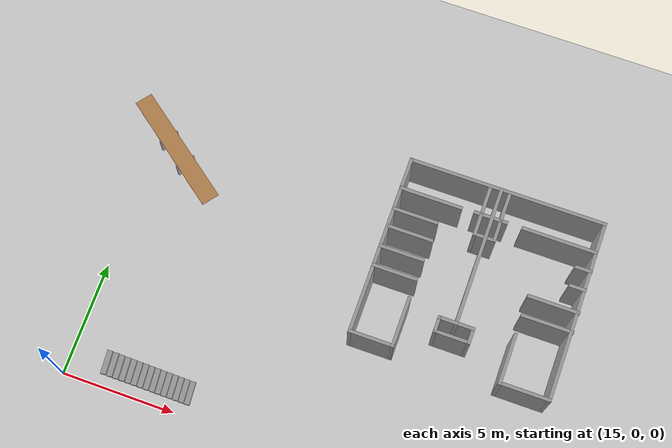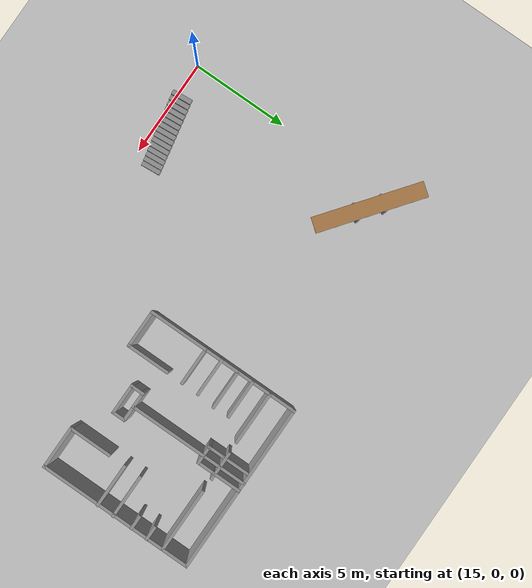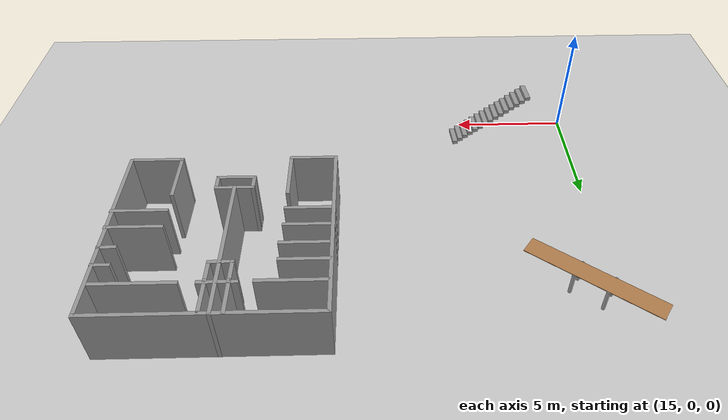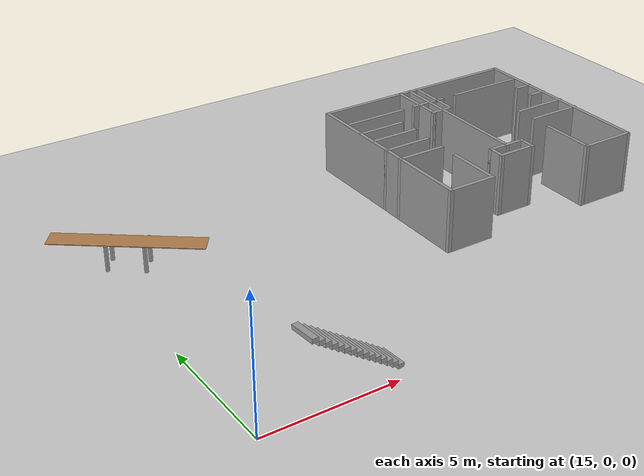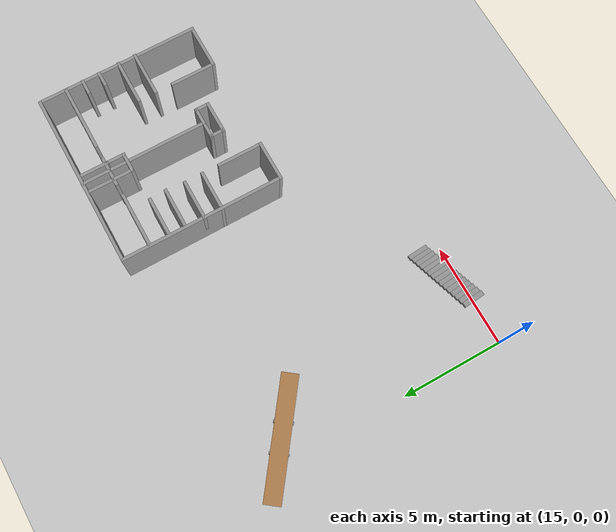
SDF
<sdf version="1.6">
 <world name="default">
  <model name="ground_plane">
   <static>1</static>
   <link name="link">
    <collision name="collision">
     <geometry><plane><normal>0 0 1</normal><size>100 100</size></plane></geometry>
     <surface>
      <contact><collide_bitmask>65535</collide_bitmask></contact>
      <friction><ode><mu>100</mu><mu2>50</mu2></ode></friction>
     </surface>
    </collision>
    <visual name="visual">
     <cast_shadows>0</cast_shadows>
     <geometry><plane><normal>0 0 1</normal><size>100 100</size></plane></geometry>
     <material>
      <script><uri>file://media/materials/scripts/gazebo.material</uri><name>Gazebo/Grey</name></script>
     </material>
    </visual>
   </link>
  </model>
  <model name="109110">
   <pose>30.204 9.17564 0 0 -0 0</pose>
   <link name="Wall_100">
    <collision name="Wall_100_Collision">
     <geometry><box><size>1 0.15 2.5</size></box></geometry>
     <pose>0 0 1.25 0 -0 0</pose>
    </collision>
    <visual name="Wall_100_Visual">
     <pose>0 0 1.25 0 -0 0</pose>
     <geometry><box><size>1 0.15 2.5</size></box></geometry>
     <material>
      <script><uri>file://media/materials/scripts/gazebo.material</uri><name>Gazebo/Grey</name></script>
      <ambient>1 1 1 1</ambient>
     </material>
     <meta><layer>0</layer></meta>
    </visual>
    <pose>-0.744046 2.12506 0 0 -0 1.5708</pose>
   </link>
   <link name="Wall_102">
    <collision name="Wall_102_Collision">
     <geometry><box><size>1.5 0.15 2.5</size></box></geometry>
     <pose>0 0 1.25 0 -0 0</pose>
    </collision>
    <visual name="Wall_102_Visual">
     <pose>0 0 1.25 0 -0 0</pose>
     <geometry><box><size>1.5 0.15 2.5</size></box></geometry>
     <material>
      <script><uri>file://media/materials/scripts/gazebo.material</uri><name>Gazebo/Grey</name></script>
      <ambient>1 1 1 1</ambient>
     </material>
     <meta><layer>0</layer></meta>
    </visual>
    <pose>-0.329046 2.61006 0 0 -0 0</pose>
   </link>
   <link name="Wall_104">
    <collision name="Wall_104_Collision">
     <geometry><box><size>3.25 0.15 2.5</size></box></geometry>
     <pose>0 0 1.25 0 -0 0</pose>
    </collision>
    <visual name="Wall_104_Visual">
     <pose>0 0 1.25 0 -0 0</pose>
     <geometry><box><size>3.25 0.15 2.5</size></box></geometry>
     <material>
      <script><uri>file://media/materials/scripts/gazebo.material</uri><name>Gazebo/Grey</name></script>
      <ambient>1 1 1 1</ambient>
     </material>
     <meta><layer>0</layer></meta>
    </visual>
    <pose>2.64595 2.61006 0 0 -0 3.14159</pose>
   </link>
   <link name="Wall_109">
    <collision name="Wall_109_Collision">
     <geometry><box><size>2.75 0.15 2.5</size></box></geometry>
     <pose>0 0 1.25 0 -0 0</pose>
    </collision>
    <visual name="Wall_109_Visual">
     <pose>0 0 1.25 0 -0 0</pose>
     <geometry><box><size>2.75 0.15 2.5</size></box></geometry>
     <material>
      <script><uri>file://media/materials/scripts/gazebo.material</uri><name>Gazebo/Grey</name></script>
      <ambient>1 1 1 1</ambient>
     </material>
     <meta><layer>0</layer></meta>
    </visual>
    <pose>-2.94405 2.59006 0 0 -0 0</pose>
   </link>
   <link name="Wall_111">
    <collision name="Wall_111_Collision">
     <geometry><box><size>1.5 0.15 2.5</size></box></geometry>
     <pose>0 0 1.25 0 -0 0</pose>
    </collision>
    <visual name="Wall_111_Visual">
     <pose>0 0 1.25 0 -0 0</pose>
     <geometry><box><size>1.5 0.15 2.5</size></box></geometry>
     <material>
      <script><uri>file://media/materials/scripts/gazebo.material</uri><name>Gazebo/Grey</name></script>
      <ambient>1 1 1 1</ambient>
     </material>
     <meta><layer>0</layer></meta>
    </visual>
    <pose>-0.744046 3.22506 0 0 -0 1.5708</pose>
   </link>
   <link name="Wall_113">
    <collision name="Wall_113_Collision">
     <geometry><box><size>1.5 0.15 2.5</size></box></geometry>
     <pose>0 0 1.25 0 -0 0</pose>
    </collision>
    <visual name="Wall_113_Visual">
     <pose>0 0 1.25 0 -0 0</pose>
     <geometry><box><size>1.5 0.15 2.5</size></box></geometry>
     <material>
      <script><uri>file://media/materials/scripts/gazebo.material</uri><name>Gazebo/Grey</name></script>
      <ambient>1 1 1 1</ambient>
     </material>
     <meta><layer>0</layer></meta>
    </visual>
    <pose>0.105954 3.22506 0 0 -0 1.5708</pose>
   </link>
   <link name="Wall_56">
    <collision name="Wall_56_Collision">
     <geometry><box><size>8 0.15 2.5</size></box></geometry>
     <pose>0 0 1.25 0 -0 0</pose>
    </collision>
    <visual name="Wall_56_Visual">
     <pose>0 0 1.25 0 -0 0</pose>
     <geometry><box><size>8 0.15 2.5</size></box></geometry>
     <material>
      <script><uri>file://media/materials/scripts/gazebo.material</uri><name>Gazebo/Grey</name></script>
      <ambient>1 1 1 1</ambient>
     </material>
     <meta><layer>0</layer></meta>
    </visual>
    <pose>-4.27595 -0.004904 0 0 -0 1.5708</pose>
   </link>
   <link name="Wall_57">
    <collision name="Wall_57_Collision">
     <geometry><box><size>8.668 0.15 2.5</size></box></geometry>
     <pose>0 0 1.25 0 -0 0</pose>
    </collision>
    <visual name="Wall_57_Visual">
     <pose>0 0 1.25 0 -0 0</pose>
     <geometry><box><size>8.668 0.15 2.5</size></box></geometry>
     <material>
      <script><uri>file://media/materials/scripts/gazebo.material</uri><name>Gazebo/Grey</name></script>
      <ambient>1 1 1 1</ambient>
     </material>
     <meta><layer>0</layer></meta>
    </visual>
    <pose>-0.016953 3.9201 0 0 -0 0</pose>
   </link>
   <link name="Wall_58">
    <collision name="Wall_58_Collision">
     <geometry><box><size>8 0.15 2.5</size></box></geometry>
     <pose>0 0 1.25 0 -0 0</pose>
    </collision>
    <visual name="Wall_58_Visual">
     <pose>0 0 1.25 0 -0 0</pose>
     <geometry><box><size>8 0.15 2.5</size></box></geometry>
     <material>
      <script><uri>file://media/materials/scripts/gazebo.material</uri><name>Gazebo/Grey</name></script>
      <ambient>1 1 1 1</ambient>
     </material>
     <meta><layer>0</layer></meta>
    </visual>
    <pose>4.24205 -0.004904 0 0 -0 -1.5708</pose>
   </link>
   <link name="Wall_61">
    <collision name="Wall_61_Collision">
     <geometry><box><size>2.25 0.15 2.5</size></box></geometry>
     <pose>0 0 1.25 0 -0 0</pose>
    </collision>
    <visual name="Wall_61_Visual">
     <pose>0 0 1.25 0 -0 0</pose>
     <geometry><box><size>2.25 0.15 2.5</size></box></geometry>
     <material>
      <script><uri>file://media/materials/scripts/gazebo.material</uri><name>Gazebo/Grey</name></script>
      <ambient>1 1 1 1</ambient>
     </material>
     <meta><layer>0</layer></meta>
    </visual>
    <pose>3.19205 -3.9299 0 0 -0 3.14159</pose>
   </link>
   <link name="Wall_62">
    <collision name="Wall_62_Collision">
     <geometry><box><size>2.25 0.15 2.5</size></box></geometry>
     <pose>0 0 1.25 0 -0 0</pose>
    </collision>
    <visual name="Wall_62_Visual">
     <pose>0 0 1.25 0 -0 0</pose>
     <geometry><box><size>2.25 0.15 2.5</size></box></geometry>
     <material>
      <script><uri>file://media/materials/scripts/gazebo.material</uri><name>Gazebo/Grey</name></script>
      <ambient>1 1 1 1</ambient>
     </material>
     <meta><layer>0</layer></meta>
    </visual>
    <pose>2.14205 -2.8799 0 0 -0 1.5708</pose>
   </link>
   <link name="Wall_64">
    <collision name="Wall_64_Collision">
     <geometry><box><size>2 0.15 2.5</size></box></geometry>
     <pose>0 0 1.25 0 -0 0</pose>
    </collision>
    <visual name="Wall_64_Visual">
     <pose>0 0 1.25 0 -0 0</pose>
     <geometry><box><size>2 0.15 2.5</size></box></geometry>
     <material>
      <script><uri>file://media/materials/scripts/gazebo.material</uri><name>Gazebo/Grey</name></script>
      <ambient>1 1 1 1</ambient>
     </material>
     <meta><layer>0</layer></meta>
    </visual>
    <pose>-3.35095 -3.9299 0 0 -0 0</pose>
   </link>
   <link name="Wall_65">
    <collision name="Wall_65_Collision">
     <geometry><box><size>2.25 0.15 2.5</size></box></geometry>
     <pose>0 0 1.25 0 -0 0</pose>
    </collision>
    <visual name="Wall_65_Visual">
     <pose>0 0 1.25 0 -0 0</pose>
     <geometry><box><size>2.25 0.15 2.5</size></box></geometry>
     <material>
      <script><uri>file://media/materials/scripts/gazebo.material</uri><name>Gazebo/Grey</name></script>
      <ambient>1 1 1 1</ambient>
     </material>
     <meta><layer>0</layer></meta>
    </visual>
    <pose>-2.42595 -2.8799 0 0 -0 1.5708</pose>
   </link>
   <link name="Wall_67">
    <collision name="Wall_67_Collision">
     <geometry><box><size>6.25 0.15 2.5</size></box></geometry>
     <pose>0 0 1.25 0 -0 0</pose>
    </collision>
    <visual name="Wall_67_Visual">
     <pose>0 0 1.25 0 -0 0</pose>
     <geometry><box><size>6.25 0.15 2.5</size></box></geometry>
     <material>
      <script><uri>file://media/materials/scripts/gazebo.material</uri><name>Gazebo/Grey</name></script>
      <ambient>1 1 1 1</ambient>
     </material>
     <meta><layer>0</layer></meta>
    </visual>
    <pose>-0.275761 0.879905 0 0 -0 -1.5708</pose>
   </link>
   <link name="Wall_68">
    <collision name="Wall_68_Collision">
     <geometry><box><size>0.88 0.15 2.5</size></box></geometry>
     <pose>0 0 1.25 0 -0 0</pose>
    </collision>
    <visual name="Wall_68_Visual">
     <pose>0 0 1.25 0 -0 0</pose>
     <geometry><box><size>0.88 0.15 2.5</size></box></geometry>
     <material>
      <script><uri>file://media/materials/scripts/gazebo.material</uri><name>Gazebo/Grey</name></script>
      <ambient>1 1 1 1</ambient>
     </material>
     <meta><layer>0</layer></meta>
    </visual>
    <pose>0.089239 -2.17009 0 0 -0 0</pose>
   </link>
   <link name="Wall_69">
    <collision name="Wall_69_Collision">
     <geometry><box><size>0.75 0.15 2.5</size></box></geometry>
     <pose>0 0 1.25 0 -0 0</pose>
    </collision>
    <visual name="Wall_69_Visual">
     <pose>0 0 1.25 0 -0 0</pose>
     <geometry><box><size>0.75 0.15 2.5</size></box></geometry>
     <material>
      <script><uri>file://media/materials/scripts/gazebo.material</uri><name>Gazebo/Grey</name></script>
      <ambient>1 1 1 1</ambient>
     </material>
     <meta><layer>0</layer></meta>
    </visual>
    <pose>0.454239 -2.4701 0 0 -0 -1.5708</pose>
   </link>
   <link name="Wall_70">
    <collision name="Wall_70_Collision">
     <geometry><box><size>1.61 0.15 2.5</size></box></geometry>
     <pose>0 0 1.25 0 -0 0</pose>
    </collision>
    <visual name="Wall_70_Visual">
     <pose>0 0 1.25 0 -0 0</pose>
     <geometry><box><size>1.61 0.15 2.5</size></box></geometry>
     <material>
      <script><uri>file://media/materials/scripts/gazebo.material</uri><name>Gazebo/Grey</name></script>
      <ambient>1 1 1 1</ambient>
     </material>
     <meta><layer>0</layer></meta>
    </visual>
    <pose>-0.275761 -2.77009 0 0 -0 3.14159</pose>
   </link>
   <link name="Wall_71">
    <collision name="Wall_71_Collision">
     <geometry><box><size>0.750333 0.15 2.5</size></box></geometry>
     <pose>0 0 1.25 0 -0 0</pose>
    </collision>
    <visual name="Wall_71_Visual">
     <pose>0 0 1.25 0 -0 0</pose>
     <geometry><box><size>0.750333 0.15 2.5</size></box></geometry>
     <material>
      <script><uri>file://media/materials/scripts/gazebo.material</uri><name>Gazebo/Grey</name></script>
      <ambient>1 1 1 1</ambient>
     </material>
     <meta><layer>0</layer></meta>
    </visual>
    <pose>-1.00576 -2.4701 0 0 -0 1.5708</pose>
   </link>
   <link name="Wall_72">
    <collision name="Wall_72_Collision">
     <geometry><box><size>0.88 0.15 2.5</size></box></geometry>
     <pose>0 0 1.25 0 -0 0</pose>
    </collision>
    <visual name="Wall_72_Visual">
     <pose>0 0 1.25 0 -0 0</pose>
     <geometry><box><size>0.88 0.15 2.5</size></box></geometry>
     <material>
      <script><uri>file://media/materials/scripts/gazebo.material</uri><name>Gazebo/Grey</name></script>
      <ambient>1 1 1 1</ambient>
     </material>
     <meta><layer>0</layer></meta>
    </visual>
    <pose>-0.640761 -2.17009 0 0 -0 0</pose>
   </link>
   <link name="Wall_74">
    <collision name="Wall_74_Collision">
     <geometry><box><size>2 0.15 2.5</size></box></geometry>
     <pose>0 0 1.25 0 -0 0</pose>
    </collision>
    <visual name="Wall_74_Visual">
     <pose>0 0 1.25 0 -0 0</pose>
     <geometry><box><size>2 0.15 2.5</size></box></geometry>
     <material>
      <script><uri>file://media/materials/scripts/gazebo.material</uri><name>Gazebo/Grey</name></script>
      <ambient>1 1 1 1</ambient>
     </material>
     <meta><layer>0</layer></meta>
    </visual>
    <pose>-3.35095 -0.969904 0 0 -0 0</pose>
   </link>
   <link name="Wall_76">
    <collision name="Wall_76_Collision">
     <geometry><box><size>2 0.15 2.5</size></box></geometry>
     <pose>0 0 1.25 0 -0 0</pose>
    </collision>
    <visual name="Wall_76_Visual">
     <pose>0 0 1.25 0 -0 0</pose>
     <geometry><box><size>2 0.15 2.5</size></box></geometry>
     <material>
      <script><uri>file://media/materials/scripts/gazebo.material</uri><name>Gazebo/Grey</name></script>
      <ambient>1 1 1 1</ambient>
     </material>
     <meta><layer>0</layer></meta>
    </visual>
    <pose>-3.35095 -0.089904 0 0 -0 0</pose>
   </link>
   <link name="Wall_79">
    <collision name="Wall_79_Collision">
     <geometry><box><size>2 0.15 2.5</size></box></geometry>
     <pose>0 0 1.25 0 -0 0</pose>
    </collision>
    <visual name="Wall_79_Visual">
     <pose>0 0 1.25 0 -0 0</pose>
     <geometry><box><size>2 0.15 2.5</size></box></geometry>
     <material>
      <script><uri>file://media/materials/scripts/gazebo.material</uri><name>Gazebo/Grey</name></script>
      <ambient>1 1 1 1</ambient>
     </material>
     <meta><layer>0</layer></meta>
    </visual>
    <pose>-3.27095 0.830096 0 0 -0 0</pose>
   </link>
   <link name="Wall_81">
    <collision name="Wall_81_Collision">
     <geometry><box><size>2 0.15 2.5</size></box></geometry>
     <pose>0 0 1.25 0 -0 0</pose>
    </collision>
    <visual name="Wall_81_Visual">
     <pose>0 0 1.25 0 -0 0</pose>
     <geometry><box><size>2 0.15 2.5</size></box></geometry>
     <material>
      <script><uri>file://media/materials/scripts/gazebo.material</uri><name>Gazebo/Grey</name></script>
      <ambient>1 1 1 1</ambient>
     </material>
     <meta><layer>0</layer></meta>
    </visual>
    <pose>-3.31095 1.6301 0 0 -0 0</pose>
   </link>
   <link name="Wall_90">
    <collision name="Wall_90_Collision">
     <geometry><box><size>2.25 0.15 2.5</size></box></geometry>
     <pose>0 0 1.25 0 -0 0</pose>
    </collision>
    <visual name="Wall_90_Visual">
     <pose>0 0 1.25 0 -0 0</pose>
     <geometry><box><size>2.25 0.15 2.5</size></box></geometry>
     <material>
      <script><uri>file://media/materials/scripts/gazebo.material</uri><name>Gazebo/Grey</name></script>
      <ambient>1 1 1 1</ambient>
     </material>
     <meta><layer>0</layer></meta>
    </visual>
    <pose>3.22595 -0.949944 0 0 -0 3.14159</pose>
   </link>
   <link name="Wall_92">
    <collision name="Wall_92_Collision">
     <geometry><box><size>2.25 0.15 2.5</size></box></geometry>
     <pose>0 0 1.25 0 -0 0</pose>
    </collision>
    <visual name="Wall_92_Visual">
     <pose>0 0 1.25 0 -0 0</pose>
     <geometry><box><size>2.25 0.15 2.5</size></box></geometry>
     <material>
      <script><uri>file://media/materials/scripts/gazebo.material</uri><name>Gazebo/Grey</name></script>
      <ambient>1 1 1 1</ambient>
     </material>
     <meta><layer>0</layer></meta>
    </visual>
    <pose>3.22595 -0.089944 0 0 -0 3.14159</pose>
   </link>
   <link name="Wall_94">
    <collision name="Wall_94_Collision">
     <geometry><box><size>0.75 0.15 2.5</size></box></geometry>
     <pose>0 0 1.25 0 -0 0</pose>
    </collision>
    <visual name="Wall_94_Visual">
     <pose>0 0 1.25 0 -0 0</pose>
     <geometry><box><size>0.75 0.15 2.5</size></box></geometry>
     <material>
      <script><uri>file://media/materials/scripts/gazebo.material</uri><name>Gazebo/Grey</name></script>
      <ambient>1 1 1 1</ambient>
     </material>
     <meta><layer>0</layer></meta>
    </visual>
    <pose>3.95595 0.910056 0 0 -0 3.14159</pose>
   </link>
   <link name="Wall_96">
    <collision name="Wall_96_Collision">
     <geometry><box><size>0.75 0.15 2.5</size></box></geometry>
     <pose>0 0 1.25 0 -0 0</pose>
    </collision>
    <visual name="Wall_96_Visual">
     <pose>0 0 1.25 0 -0 0</pose>
     <geometry><box><size>0.75 0.15 2.5</size></box></geometry>
     <material>
      <script><uri>file://media/materials/scripts/gazebo.material</uri><name>Gazebo/Grey</name></script>
      <ambient>1 1 1 1</ambient>
     </material>
     <meta><layer>0</layer></meta>
    </visual>
    <pose>3.95595 1.75006 0 0 -0 3.14159</pose>
   </link>
   <link name="Wall_98">
    <collision name="Wall_98_Collision">
     <geometry><box><size>1 0.15 2.5</size></box></geometry>
     <pose>0 0 1.25 0 -0 0</pose>
    </collision>
    <visual name="Wall_98_Visual">
     <pose>0 0 1.25 0 -0 0</pose>
     <geometry><box><size>1 0.15 2.5</size></box></geometry>
     <material>
      <script><uri>file://media/materials/scripts/gazebo.material</uri><name>Gazebo/Grey</name></script>
      <ambient>1 1 1 1</ambient>
     </material>
     <meta><layer>0</layer></meta>
    </visual>
    <pose>0.105954 2.12506 0 0 -0 -1.5708</pose>
   </link>
   <link name="Wall_99">
    <collision name="Wall_99_Collision">
     <geometry><box><size>1 0.15 2.5</size></box></geometry>
     <pose>0 0 1.25 0 -0 0</pose>
    </collision>
    <visual name="Wall_99_Visual">
     <pose>0 0 1.25 0 -0 0</pose>
     <geometry><box><size>1 0.15 2.5</size></box></geometry>
     <material>
      <script><uri>file://media/materials/scripts/gazebo.material</uri><name>Gazebo/Grey</name></script>
      <ambient>1 1 1 1</ambient>
     </material>
     <meta><layer>0</layer></meta>
    </visual>
    <pose>-0.319046 1.70006 0 0 -0 3.14159</pose>
   </link>
   <static>1</static>
  </model>
  <model name="tables">
   <link name="link_clone_clone_0_clone">
    <inertial>
     <inertia><ixx>0</ixx><ixy>0</ixy><ixz>0</ixz><iyy>0</iyy><iyz>0</iyz><izz>0</izz></inertia>
     <mass>0</mass>
    </inertial>
    <pose>4.16958 -3.97969 0 0 0 -0.65005</pose>
    <visual name="back_right_leg">
     <pose>-0.68 -0.38 0.5 0 -0 0</pose>
     <geometry><cylinder><radius>0.0748358</radius><length>1</length></cylinder></geometry>
     <material>
      <script><uri>file://media/materials/scripts/gazebo.material</uri><name>Gazebo/Grey</name></script>
      <shader type="pixel"/>
     </material>
    </visual>
    <visual name="front_right_leg">
     <pose>0.68 -0.38 0.5 0 -0 0</pose>
     <geometry><cylinder><radius>0.0748358</radius><length>1</length></cylinder></geometry>
     <material>
      <script><uri>file://media/materials/scripts/gazebo.material</uri><name>Gazebo/Grey</name></script>
      <shader type="pixel"/>
     </material>
    </visual>
    <visual name="front_left_leg">
     <pose>0.68 0.38 0.5 0 -0 0</pose>
     <geometry><cylinder><radius>0.0748358</radius><length>1</length></cylinder></geometry>
     <material>
      <script><uri>file://media/materials/scripts/gazebo.material</uri><name>Gazebo/Grey</name></script>
      <shader type="pixel"/>
     </material>
    </visual>
    <visual name="back_left_leg">
     <pose>-0.68 0.38 0.5 0 -0 0</pose>
     <geometry><cylinder><radius>0.0748358</radius><length>1</length></cylinder></geometry>
     <material>
      <script><uri>file://media/materials/scripts/gazebo.material</uri><name>Gazebo/Grey</name></script>
      <shader type="pixel"/>
     </material>
    </visual>
    <visual name="visual1">
     <pose>0 0 1 0 -0 0</pose>
     <geometry><box><size>5.60463 0.8 0.03</size></box></geometry>
     <material>
      <script><uri>file://media/materials/scripts/gazebo.material</uri><name>Gazebo/Wood</name></script>
      <shader type="pixel"/>
     </material>
    </visual>
    <collision name="front_right_leg_0">
     <pose>0.68 -0.38 0.5 0 -0 0</pose>
     <geometry><cylinder><radius>0.074836</radius><length>1</length></cylinder></geometry>
     <surface>
      <friction>
       <ode><mu>1</mu><mu2>1</mu2><fdir1>0 0 0</fdir1><slip1>0</slip1><slip2>0</slip2></ode>
       <torsional>
        <coefficient>1</coefficient>
        <patch_radius>0</patch_radius>
        <surface_radius>0</surface_radius>
        <use_patch_radius>1</use_patch_radius>
        <ode><slip>0</slip></ode>
       </torsional>
      </friction>
      <bounce><restitution_coefficient>0</restitution_coefficient><threshold>1e+06</threshold></bounce>
      <contact>
       <collide_without_contact>0</collide_without_contact>
       <collide_without_contact_bitmask>1</collide_without_contact_bitmask>
       <collide_bitmask>1</collide_bitmask>
       <ode>
        <soft_cfm>0</soft_cfm>
        <soft_erp>0.2</soft_erp>
        <kp>1e+13</kp>
        <kd>1</kd>
        <max_vel>0.01</max_vel>
        <min_depth>0</min_depth>
       </ode>
       <bullet>
        <split_impulse>1</split_impulse>
        <split_impulse_penetration_threshold>-0.01</split_impulse_penetration_threshold>
        <soft_cfm>0</soft_cfm>
        <soft_erp>0.2</soft_erp>
        <kp>1e+13</kp>
        <kd>1</kd>
       </bullet>
      </contact>
     </surface>
    </collision>
    <collision name="back_right_leg_0">
     <pose>-0.68 -0.38 0.5 0 -0 0</pose>
     <geometry><cylinder><radius>0.074836</radius><length>1</length></cylinder></geometry>
     <surface>
      <friction>
       <ode><mu>1</mu><mu2>1</mu2><fdir1>0 0 0</fdir1><slip1>0</slip1><slip2>0</slip2></ode>
       <torsional>
        <coefficient>1</coefficient>
        <patch_radius>0</patch_radius>
        <surface_radius>0</surface_radius>
        <use_patch_radius>1</use_patch_radius>
        <ode><slip>0</slip></ode>
       </torsional>
      </friction>
      <bounce><restitution_coefficient>0</restitution_coefficient><threshold>1e+06</threshold></bounce>
      <contact>
       <collide_without_contact>0</collide_without_contact>
       <collide_without_contact_bitmask>1</collide_without_contact_bitmask>
       <collide_bitmask>1</collide_bitmask>
       <ode>
        <soft_cfm>0</soft_cfm>
        <soft_erp>0.2</soft_erp>
        <kp>1e+13</kp>
        <kd>1</kd>
        <max_vel>0.01</max_vel>
        <min_depth>0</min_depth>
       </ode>
       <bullet>
        <split_impulse>1</split_impulse>
        <split_impulse_penetration_threshold>-0.01</split_impulse_penetration_threshold>
        <soft_cfm>0</soft_cfm>
        <soft_erp>0.2</soft_erp>
        <kp>1e+13</kp>
        <kd>1</kd>
       </bullet>
      </contact>
     </surface>
    </collision>
    <collision name="back_left_leg_0">
     <pose>-0.68 0.38 0.5 0 -0 0</pose>
     <geometry><cylinder><radius>0.074836</radius><length>1</length></cylinder></geometry>
     <surface>
      <friction>
       <ode><mu>1</mu><mu2>1</mu2><fdir1>0 0 0</fdir1><slip1>0</slip1><slip2>0</slip2></ode>
       <torsional>
        <coefficient>1</coefficient>
        <patch_radius>0</patch_radius>
        <surface_radius>0</surface_radius>
        <use_patch_radius>1</use_patch_radius>
        <ode><slip>0</slip></ode>
       </torsional>
      </friction>
      <bounce><restitution_coefficient>0</restitution_coefficient><threshold>1e+06</threshold></bounce>
      <contact>
       <collide_without_contact>0</collide_without_contact>
       <collide_without_contact_bitmask>1</collide_without_contact_bitmask>
       <collide_bitmask>1</collide_bitmask>
       <ode>
        <soft_cfm>0</soft_cfm>
        <soft_erp>0.2</soft_erp>
        <kp>1e+13</kp>
        <kd>1</kd>
        <max_vel>0.01</max_vel>
        <min_depth>0</min_depth>
       </ode>
       <bullet>
        <split_impulse>1</split_impulse>
        <split_impulse_penetration_threshold>-0.01</split_impulse_penetration_threshold>
        <soft_cfm>0</soft_cfm>
        <soft_erp>0.2</soft_erp>
        <kp>1e+13</kp>
        <kd>1</kd>
       </bullet>
      </contact>
     </surface>
    </collision>
    <collision name="surface">
     <pose>0 0 1 0 -0 0</pose>
     <geometry><box><size>5.60463 0.8 0.03</size></box></geometry>
     <surface>
      <friction>
       <ode><mu>1</mu><mu2>1</mu2><fdir1>0 0 0</fdir1><slip1>0</slip1><slip2>0</slip2></ode>
       <torsional>
        <coefficient>1</coefficient>
        <patch_radius>0</patch_radius>
        <surface_radius>0</surface_radius>
        <use_patch_radius>1</use_patch_radius>
        <ode><slip>0</slip></ode>
       </torsional>
      </friction>
      <bounce><restitution_coefficient>0</restitution_coefficient><threshold>1e+06</threshold></bounce>
      <contact>
       <collide_without_contact>0</collide_without_contact>
       <collide_without_contact_bitmask>1</collide_without_contact_bitmask>
       <collide_bitmask>1</collide_bitmask>
       <ode>
        <soft_cfm>0</soft_cfm>
        <soft_erp>0.2</soft_erp>
        <kp>1e+13</kp>
        <kd>1</kd>
        <max_vel>0.01</max_vel>
        <min_depth>0</min_depth>
       </ode>
       <bullet>
        <split_impulse>1</split_impulse>
        <split_impulse_penetration_threshold>-0.01</split_impulse_penetration_threshold>
        <soft_cfm>0</soft_cfm>
        <soft_erp>0.2</soft_erp>
        <kp>1e+13</kp>
        <kd>1</kd>
       </bullet>
      </contact>
     </surface>
    </collision>
    <collision name="front_left_leg_0">
     <pose>0.68 0.38 0.5 0 -0 0</pose>
     <geometry><cylinder><radius>0.074836</radius><length>1</length></cylinder></geometry>
     <surface>
      <friction>
       <ode><mu>1</mu><mu2>1</mu2><fdir1>0 0 0</fdir1><slip1>0</slip1><slip2>0</slip2></ode>
       <torsional>
        <coefficient>1</coefficient>
        <patch_radius>0</patch_radius>
        <surface_radius>0</surface_radius>
        <use_patch_radius>1</use_patch_radius>
        <ode><slip>0</slip></ode>
       </torsional>
      </friction>
      <bounce><restitution_coefficient>0</restitution_coefficient><threshold>1e+06</threshold></bounce>
      <contact>
       <collide_without_contact>0</collide_without_contact>
       <collide_without_contact_bitmask>1</collide_without_contact_bitmask>
       <collide_bitmask>1</collide_bitmask>
       <ode>
        <soft_cfm>0</soft_cfm>
        <soft_erp>0.2</soft_erp>
        <kp>1e+13</kp>
        <kd>1</kd>
        <max_vel>0.01</max_vel>
        <min_depth>0</min_depth>
       </ode>
       <bullet>
        <split_impulse>1</split_impulse>
        <split_impulse_penetration_threshold>-0.01</split_impulse_penetration_threshold>
        <soft_cfm>0</soft_cfm>
        <soft_erp>0.2</soft_erp>
        <kp>1e+13</kp>
        <kd>1</kd>
       </bullet>
      </contact>
     </surface>
    </collision>
   </link>
   <static>1</static>
   <pose>11.8893 14.6757 0 0 -0 0</pose>
  </model>
  <model name="Staircase_3">
   <link name="Stairs_0">
    <visual name="Stairs_0_Visual_12">
     <pose>1.16667 0 2.08333 0 -0 1.5708</pose>
     <geometry><box><size>1 0.233333 0.166667</size></box></geometry>
     <material>
      <script><uri>file://media/materials/scripts/gazebo.material</uri><name>Gazebo/Grey</name></script>
      <ambient>1 1 1 1</ambient>
      <shader type="pixel"/>
     </material>
     <meta><layer>0</layer></meta>
    </visual>
    <visual name="Stairs_0_Visual_13">
     <pose>1.4 0 2.25 0 -0 1.5708</pose>
     <geometry><box><size>1 0.233333 0.166667</size></box></geometry>
     <material>
      <script><uri>file://media/materials/scripts/gazebo.material</uri><name>Gazebo/Grey</name></script>
      <ambient>1 1 1 1</ambient>
      <shader type="pixel"/>
     </material>
     <meta><layer>0</layer></meta>
    </visual>
    <visual name="Stairs_0_Visual_14">
     <pose>1.63333 0 2.41667 0 -0 1.5708</pose>
     <geometry><box><size>1 0.233333 0.166667</size></box></geometry>
     <material>
      <script><uri>file://media/materials/scripts/gazebo.material</uri><name>Gazebo/Grey</name></script>
      <ambient>1 1 1 1</ambient>
      <shader type="pixel"/>
     </material>
     <meta><layer>0</layer></meta>
    </visual>
    <visual name="Stairs_0_Visual_0">
     <pose>-1.63333 -0 0.083333 0 -0 1.5708</pose>
     <geometry><box><size>1 0.233333 0.166667</size></box></geometry>
     <material>
      <script><uri>file://media/materials/scripts/gazebo.material</uri><name>Gazebo/Grey</name></script>
      <ambient>1 1 1 1</ambient>
      <shader type="pixel"/>
     </material>
     <meta><layer>0</layer></meta>
    </visual>
    <visual name="Stairs_0_Visual_2">
     <pose>-1.16667 -0 0.416667 0 -0 1.5708</pose>
     <geometry><box><size>1 0.233333 0.166667</size></box></geometry>
     <material>
      <script><uri>file://media/materials/scripts/gazebo.material</uri><name>Gazebo/Grey</name></script>
      <ambient>1 1 1 1</ambient>
      <shader type="pixel"/>
     </material>
     <meta><layer>0</layer></meta>
    </visual>
    <visual name="Stairs_0_Visual_3">
     <pose>-0.933333 -0 0.583333 0 -0 1.5708</pose>
     <geometry><box><size>1 0.233333 0.166667</size></box></geometry>
     <material>
      <script><uri>file://media/materials/scripts/gazebo.material</uri><name>Gazebo/Grey</name></script>
      <ambient>1 1 1 1</ambient>
      <shader type="pixel"/>
     </material>
     <meta><layer>0</layer></meta>
    </visual>
    <visual name="Stairs_0_Visual_4">
     <pose>-0.7 0 0.75 0 -0 1.5708</pose>
     <geometry><box><size>1 0.233333 0.166667</size></box></geometry>
     <material>
      <script><uri>file://media/materials/scripts/gazebo.material</uri><name>Gazebo/Grey</name></script>
      <ambient>1 1 1 1</ambient>
      <shader type="pixel"/>
     </material>
     <meta><layer>0</layer></meta>
    </visual>
    <visual name="Stairs_0_Visual_5">
     <pose>-0.466667 0 0.916667 0 -0 1.5708</pose>
     <geometry><box><size>1 0.233333 0.166667</size></box></geometry>
     <material>
      <script><uri>file://media/materials/scripts/gazebo.material</uri><name>Gazebo/Grey</name></script>
      <ambient>1 1 1 1</ambient>
      <shader type="pixel"/>
     </material>
     <meta><layer>0</layer></meta>
    </visual>
    <visual name="Stairs_0_Visual_6">
     <pose>-0.233333 0 1.08333 0 -0 1.5708</pose>
     <geometry><box><size>1 0.233333 0.166667</size></box></geometry>
     <material>
      <script><uri>file://media/materials/scripts/gazebo.material</uri><name>Gazebo/Grey</name></script>
      <ambient>1 1 1 1</ambient>
      <shader type="pixel"/>
     </material>
     <meta><layer>0</layer></meta>
    </visual>
    <visual name="Stairs_0_Visual_7">
     <pose>0 0 1.25 0 -0 1.5708</pose>
     <geometry><box><size>1 0.233333 0.166667</size></box></geometry>
     <material>
      <script><uri>file://media/materials/scripts/gazebo.material</uri><name>Gazebo/Grey</name></script>
      <ambient>1 1 1 1</ambient>
      <shader type="pixel"/>
     </material>
     <meta><layer>0</layer></meta>
    </visual>
    <visual name="Stairs_0_Visual_8">
     <pose>0.233333 0 1.41667 0 -0 1.5708</pose>
     <geometry><box><size>1 0.233333 0.166667</size></box></geometry>
     <material>
      <script><uri>file://media/materials/scripts/gazebo.material</uri><name>Gazebo/Grey</name></script>
      <ambient>1 1 1 1</ambient>
      <shader type="pixel"/>
     </material>
     <meta><layer>0</layer></meta>
    </visual>
    <visual name="Stairs_0_Visual_9">
     <pose>0.466667 0 1.58333 0 -0 1.5708</pose>
     <geometry><box><size>1 0.233333 0.166667</size></box></geometry>
     <material>
      <script><uri>file://media/materials/scripts/gazebo.material</uri><name>Gazebo/Grey</name></script>
      <ambient>1 1 1 1</ambient>
      <shader type="pixel"/>
     </material>
     <meta><layer>0</layer></meta>
    </visual>
    <visual name="Stairs_0_Visual_10">
     <pose>0.7 0 1.75 0 -0 1.5708</pose>
     <geometry><box><size>1 0.233333 0.166667</size></box></geometry>
     <material>
      <script><uri>file://media/materials/scripts/gazebo.material</uri><name>Gazebo/Grey</name></script>
      <ambient>1 1 1 1</ambient>
      <shader type="pixel"/>
     </material>
     <meta><layer>0</layer></meta>
    </visual>
    <visual name="Stairs_0_Visual_11">
     <pose>0.933334 0 1.91667 0 -0 1.5708</pose>
     <geometry><box><size>1 0.233333 0.166667</size></box></geometry>
     <material>
      <script><uri>file://media/materials/scripts/gazebo.material</uri><name>Gazebo/Grey</name></script>
      <ambient>1 1 1 1</ambient>
      <shader type="pixel"/>
     </material>
     <meta><layer>0</layer></meta>
    </visual>
    <visual name="Stairs_0_Visual_1">
     <pose>-1.4 -0 0.25 0 -0 1.5708</pose>
     <geometry><box><size>1 0.233333 0.166667</size></box></geometry>
     <material>
      <script><uri>file://media/materials/scripts/gazebo.material</uri><name>Gazebo/Grey</name></script>
      <ambient>1 1 1 1</ambient>
      <shader type="pixel"/>
     </material>
     <meta><layer>0</layer></meta>
    </visual>
    <collision name="Stairs_0_Collision_0">
     <pose>-1.63333 0 0.083333 0 -0 1.5708</pose>
     <geometry><box><size>1 0.233333 0.166667</size></box></geometry>
     <surface>
      <friction>
       <ode><mu>1</mu><mu2>1</mu2><fdir1>0 0 0</fdir1><slip1>0</slip1><slip2>0</slip2></ode>
       <torsional>
        <coefficient>1</coefficient>
        <patch_radius>0</patch_radius>
        <surface_radius>0</surface_radius>
        <use_patch_radius>1</use_patch_radius>
        <ode><slip>0</slip></ode>
       </torsional>
      </friction>
      <bounce><restitution_coefficient>0</restitution_coefficient><threshold>1e+06</threshold></bounce>
      <contact>
       <collide_without_contact>0</collide_without_contact>
       <collide_without_contact_bitmask>1</collide_without_contact_bitmask>
       <collide_bitmask>1</collide_bitmask>
       <ode>
        <soft_cfm>0</soft_cfm>
        <soft_erp>0.2</soft_erp>
        <kp>1e+13</kp>
        <kd>1</kd>
        <max_vel>0.01</max_vel>
        <min_depth>0</min_depth>
       </ode>
       <bullet>
        <split_impulse>1</split_impulse>
        <split_impulse_penetration_threshold>-0.01</split_impulse_penetration_threshold>
        <soft_cfm>0</soft_cfm>
        <soft_erp>0.2</soft_erp>
        <kp>1e+13</kp>
        <kd>1</kd>
       </bullet>
      </contact>
     </surface>
    </collision>
    <collision name="Stairs_0_Collision_1">
     <pose>-1.4 0 0.25 0 -0 1.5708</pose>
     <geometry><box><size>1 0.233333 0.166667</size></box></geometry>
     <surface>
      <friction>
       <ode><mu>1</mu><mu2>1</mu2><fdir1>0 0 0</fdir1><slip1>0</slip1><slip2>0</slip2></ode>
       <torsional>
        <coefficient>1</coefficient>
        <patch_radius>0</patch_radius>
        <surface_radius>0</surface_radius>
        <use_patch_radius>1</use_patch_radius>
        <ode><slip>0</slip></ode>
       </torsional>
      </friction>
      <bounce><restitution_coefficient>0</restitution_coefficient><threshold>1e+06</threshold></bounce>
      <contact>
       <collide_without_contact>0</collide_without_contact>
       <collide_without_contact_bitmask>1</collide_without_contact_bitmask>
       <collide_bitmask>1</collide_bitmask>
       <ode>
        <soft_cfm>0</soft_cfm>
        <soft_erp>0.2</soft_erp>
        <kp>1e+13</kp>
        <kd>1</kd>
        <max_vel>0.01</max_vel>
        <min_depth>0</min_depth>
       </ode>
       <bullet>
        <split_impulse>1</split_impulse>
        <split_impulse_penetration_threshold>-0.01</split_impulse_penetration_threshold>
        <soft_cfm>0</soft_cfm>
        <soft_erp>0.2</soft_erp>
        <kp>1e+13</kp>
        <kd>1</kd>
       </bullet>
      </contact>
     </surface>
    </collision>
    <collision name="Stairs_0_Collision_2">
     <pose>-1.16667 0 0.416667 0 -0 1.5708</pose>
     <geometry><box><size>1 0.233333 0.166667</size></box></geometry>
     <surface>
      <friction>
       <ode><mu>1</mu><mu2>1</mu2><fdir1>0 0 0</fdir1><slip1>0</slip1><slip2>0</slip2></ode>
       <torsional>
        <coefficient>1</coefficient>
        <patch_radius>0</patch_radius>
        <surface_radius>0</surface_radius>
        <use_patch_radius>1</use_patch_radius>
        <ode><slip>0</slip></ode>
       </torsional>
      </friction>
      <bounce><restitution_coefficient>0</restitution_coefficient><threshold>1e+06</threshold></bounce>
      <contact>
       <collide_without_contact>0</collide_without_contact>
       <collide_without_contact_bitmask>1</collide_without_contact_bitmask>
       <collide_bitmask>1</collide_bitmask>
       <ode>
        <soft_cfm>0</soft_cfm>
        <soft_erp>0.2</soft_erp>
        <kp>1e+13</kp>
        <kd>1</kd>
        <max_vel>0.01</max_vel>
        <min_depth>0</min_depth>
       </ode>
       <bullet>
        <split_impulse>1</split_impulse>
        <split_impulse_penetration_threshold>-0.01</split_impulse_penetration_threshold>
        <soft_cfm>0</soft_cfm>
        <soft_erp>0.2</soft_erp>
        <kp>1e+13</kp>
        <kd>1</kd>
       </bullet>
      </contact>
     </surface>
    </collision>
    <collision name="Stairs_0_Collision_3">
     <pose>-0.933333 0 0.583333 0 -0 1.5708</pose>
     <geometry><box><size>1 0.233333 0.166667</size></box></geometry>
     <surface>
      <friction>
       <ode><mu>1</mu><mu2>1</mu2><fdir1>0 0 0</fdir1><slip1>0</slip1><slip2>0</slip2></ode>
       <torsional>
        <coefficient>1</coefficient>
        <patch_radius>0</patch_radius>
        <surface_radius>0</surface_radius>
        <use_patch_radius>1</use_patch_radius>
        <ode><slip>0</slip></ode>
       </torsional>
      </friction>
      <bounce><restitution_coefficient>0</restitution_coefficient><threshold>1e+06</threshold></bounce>
      <contact>
       <collide_without_contact>0</collide_without_contact>
       <collide_without_contact_bitmask>1</collide_without_contact_bitmask>
       <collide_bitmask>1</collide_bitmask>
       <ode>
        <soft_cfm>0</soft_cfm>
        <soft_erp>0.2</soft_erp>
        <kp>1e+13</kp>
        <kd>1</kd>
        <max_vel>0.01</max_vel>
        <min_depth>0</min_depth>
       </ode>
       <bullet>
        <split_impulse>1</split_impulse>
        <split_impulse_penetration_threshold>-0.01</split_impulse_penetration_threshold>
        <soft_cfm>0</soft_cfm>
        <soft_erp>0.2</soft_erp>
        <kp>1e+13</kp>
        <kd>1</kd>
       </bullet>
      </contact>
     </surface>
    </collision>
    <collision name="Stairs_0_Collision_4">
     <pose>-0.7 0 0.75 0 -0 1.5708</pose>
     <geometry><box><size>1 0.233333 0.166667</size></box></geometry>
     <surface>
      <friction>
       <ode><mu>1</mu><mu2>1</mu2><fdir1>0 0 0</fdir1><slip1>0</slip1><slip2>0</slip2></ode>
       <torsional>
        <coefficient>1</coefficient>
        <patch_radius>0</patch_radius>
        <surface_radius>0</surface_radius>
        <use_patch_radius>1</use_patch_radius>
        <ode><slip>0</slip></ode>
       </torsional>
      </friction>
      <bounce><restitution_coefficient>0</restitution_coefficient><threshold>1e+06</threshold></bounce>
      <contact>
       <collide_without_contact>0</collide_without_contact>
       <collide_without_contact_bitmask>1</collide_without_contact_bitmask>
       <collide_bitmask>1</collide_bitmask>
       <ode>
        <soft_cfm>0</soft_cfm>
        <soft_erp>0.2</soft_erp>
        <kp>1e+13</kp>
        <kd>1</kd>
        <max_vel>0.01</max_vel>
        <min_depth>0</min_depth>
       </ode>
       <bullet>
        <split_impulse>1</split_impulse>
        <split_impulse_penetration_threshold>-0.01</split_impulse_penetration_threshold>
        <soft_cfm>0</soft_cfm>
        <soft_erp>0.2</soft_erp>
        <kp>1e+13</kp>
        <kd>1</kd>
       </bullet>
      </contact>
     </surface>
    </collision>
    <collision name="Stairs_0_Collision_5">
     <pose>-0.466667 0 0.916667 0 -0 1.5708</pose>
     <geometry><box><size>1 0.233333 0.166667</size></box></geometry>
     <surface>
      <friction>
       <ode><mu>1</mu><mu2>1</mu2><fdir1>0 0 0</fdir1><slip1>0</slip1><slip2>0</slip2></ode>
       <torsional>
        <coefficient>1</coefficient>
        <patch_radius>0</patch_radius>
        <surface_radius>0</surface_radius>
        <use_patch_radius>1</use_patch_radius>
        <ode><slip>0</slip></ode>
       </torsional>
      </friction>
      <bounce><restitution_coefficient>0</restitution_coefficient><threshold>1e+06</threshold></bounce>
      <contact>
       <collide_without_contact>0</collide_without_contact>
       <collide_without_contact_bitmask>1</collide_without_contact_bitmask>
       <collide_bitmask>1</collide_bitmask>
       <ode>
        <soft_cfm>0</soft_cfm>
        <soft_erp>0.2</soft_erp>
        <kp>1e+13</kp>
        <kd>1</kd>
        <max_vel>0.01</max_vel>
        <min_depth>0</min_depth>
       </ode>
       <bullet>
        <split_impulse>1</split_impulse>
        <split_impulse_penetration_threshold>-0.01</split_impulse_penetration_threshold>
        <soft_cfm>0</soft_cfm>
        <soft_erp>0.2</soft_erp>
        <kp>1e+13</kp>
        <kd>1</kd>
       </bullet>
      </contact>
     </surface>
    </collision>
    <collision name="Stairs_0_Collision_6">
     <pose>-0.233333 0 1.08333 0 -0 1.5708</pose>
     <geometry><box><size>1 0.233333 0.166667</size></box></geometry>
     <surface>
      <friction>
       <ode><mu>1</mu><mu2>1</mu2><fdir1>0 0 0</fdir1><slip1>0</slip1><slip2>0</slip2></ode>
       <torsional>
        <coefficient>1</coefficient>
        <patch_radius>0</patch_radius>
        <surface_radius>0</surface_radius>
        <use_patch_radius>1</use_patch_radius>
        <ode><slip>0</slip></ode>
       </torsional>
      </friction>
      <bounce><restitution_coefficient>0</restitution_coefficient><threshold>1e+06</threshold></bounce>
      <contact>
       <collide_without_contact>0</collide_without_contact>
       <collide_without_contact_bitmask>1</collide_without_contact_bitmask>
       <collide_bitmask>1</collide_bitmask>
       <ode>
        <soft_cfm>0</soft_cfm>
        <soft_erp>0.2</soft_erp>
        <kp>1e+13</kp>
        <kd>1</kd>
        <max_vel>0.01</max_vel>
        <min_depth>0</min_depth>
       </ode>
       <bullet>
        <split_impulse>1</split_impulse>
        <split_impulse_penetration_threshold>-0.01</split_impulse_penetration_threshold>
        <soft_cfm>0</soft_cfm>
        <soft_erp>0.2</soft_erp>
        <kp>1e+13</kp>
        <kd>1</kd>
       </bullet>
      </contact>
     </surface>
    </collision>
    <collision name="Stairs_0_Collision_7">
     <pose>0 0 1.25 0 -0 1.5708</pose>
     <geometry><box><size>1 0.233333 0.166667</size></box></geometry>
     <surface>
      <friction>
       <ode><mu>1</mu><mu2>1</mu2><fdir1>0 0 0</fdir1><slip1>0</slip1><slip2>0</slip2></ode>
       <torsional>
        <coefficient>1</coefficient>
        <patch_radius>0</patch_radius>
        <surface_radius>0</surface_radius>
        <use_patch_radius>1</use_patch_radius>
        <ode><slip>0</slip></ode>
       </torsional>
      </friction>
      <bounce><restitution_coefficient>0</restitution_coefficient><threshold>1e+06</threshold></bounce>
      <contact>
       <collide_without_contact>0</collide_without_contact>
       <collide_without_contact_bitmask>1</collide_without_contact_bitmask>
       <collide_bitmask>1</collide_bitmask>
       <ode>
        <soft_cfm>0</soft_cfm>
        <soft_erp>0.2</soft_erp>
        <kp>1e+13</kp>
        <kd>1</kd>
        <max_vel>0.01</max_vel>
        <min_depth>0</min_depth>
       </ode>
       <bullet>
        <split_impulse>1</split_impulse>
        <split_impulse_penetration_threshold>-0.01</split_impulse_penetration_threshold>
        <soft_cfm>0</soft_cfm>
        <soft_erp>0.2</soft_erp>
        <kp>1e+13</kp>
        <kd>1</kd>
       </bullet>
      </contact>
     </surface>
    </collision>
    <collision name="Stairs_0_Collision_8">
     <pose>0.233333 0 1.41667 0 -0 1.5708</pose>
     <geometry><box><size>1 0.233333 0.166667</size></box></geometry>
     <surface>
      <friction>
       <ode><mu>1</mu><mu2>1</mu2><fdir1>0 0 0</fdir1><slip1>0</slip1><slip2>0</slip2></ode>
       <torsional>
        <coefficient>1</coefficient>
        <patch_radius>0</patch_radius>
        <surface_radius>0</surface_radius>
        <use_patch_radius>1</use_patch_radius>
        <ode><slip>0</slip></ode>
       </torsional>
      </friction>
      <bounce><restitution_coefficient>0</restitution_coefficient><threshold>1e+06</threshold></bounce>
      <contact>
       <collide_without_contact>0</collide_without_contact>
       <collide_without_contact_bitmask>1</collide_without_contact_bitmask>
       <collide_bitmask>1</collide_bitmask>
       <ode>
        <soft_cfm>0</soft_cfm>
        <soft_erp>0.2</soft_erp>
        <kp>1e+13</kp>
        <kd>1</kd>
        <max_vel>0.01</max_vel>
        <min_depth>0</min_depth>
       </ode>
       <bullet>
        <split_impulse>1</split_impulse>
        <split_impulse_penetration_threshold>-0.01</split_impulse_penetration_threshold>
        <soft_cfm>0</soft_cfm>
        <soft_erp>0.2</soft_erp>
        <kp>1e+13</kp>
        <kd>1</kd>
       </bullet>
      </contact>
     </surface>
    </collision>
    <collision name="Stairs_0_Collision_9">
     <pose>0.466667 0 1.58333 0 -0 1.5708</pose>
     <geometry><box><size>1 0.233333 0.166667</size></box></geometry>
     <surface>
      <friction>
       <ode><mu>1</mu><mu2>1</mu2><fdir1>0 0 0</fdir1><slip1>0</slip1><slip2>0</slip2></ode>
       <torsional>
        <coefficient>1</coefficient>
        <patch_radius>0</patch_radius>
        <surface_radius>0</surface_radius>
        <use_patch_radius>1</use_patch_radius>
        <ode><slip>0</slip></ode>
       </torsional>
      </friction>
      <bounce><restitution_coefficient>0</restitution_coefficient><threshold>1e+06</threshold></bounce>
      <contact>
       <collide_without_contact>0</collide_without_contact>
       <collide_without_contact_bitmask>1</collide_without_contact_bitmask>
       <collide_bitmask>1</collide_bitmask>
       <ode>
        <soft_cfm>0</soft_cfm>
        <soft_erp>0.2</soft_erp>
        <kp>1e+13</kp>
        <kd>1</kd>
        <max_vel>0.01</max_vel>
        <min_depth>0</min_depth>
       </ode>
       <bullet>
        <split_impulse>1</split_impulse>
        <split_impulse_penetration_threshold>-0.01</split_impulse_penetration_threshold>
        <soft_cfm>0</soft_cfm>
        <soft_erp>0.2</soft_erp>
        <kp>1e+13</kp>
        <kd>1</kd>
       </bullet>
      </contact>
     </surface>
    </collision>
    <collision name="Stairs_0_Collision_10">
     <pose>0.7 0 1.75 0 -0 1.5708</pose>
     <geometry><box><size>1 0.233333 0.166667</size></box></geometry>
     <surface>
      <friction>
       <ode><mu>1</mu><mu2>1</mu2><fdir1>0 0 0</fdir1><slip1>0</slip1><slip2>0</slip2></ode>
       <torsional>
        <coefficient>1</coefficient>
        <patch_radius>0</patch_radius>
        <surface_radius>0</surface_radius>
        <use_patch_radius>1</use_patch_radius>
        <ode><slip>0</slip></ode>
       </torsional>
      </friction>
      <bounce><restitution_coefficient>0</restitution_coefficient><threshold>1e+06</threshold></bounce>
      <contact>
       <collide_without_contact>0</collide_without_contact>
       <collide_without_contact_bitmask>1</collide_without_contact_bitmask>
       <collide_bitmask>1</collide_bitmask>
       <ode>
        <soft_cfm>0</soft_cfm>
        <soft_erp>0.2</soft_erp>
        <kp>1e+13</kp>
        <kd>1</kd>
        <max_vel>0.01</max_vel>
        <min_depth>0</min_depth>
       </ode>
       <bullet>
        <split_impulse>1</split_impulse>
        <split_impulse_penetration_threshold>-0.01</split_impulse_penetration_threshold>
        <soft_cfm>0</soft_cfm>
        <soft_erp>0.2</soft_erp>
        <kp>1e+13</kp>
        <kd>1</kd>
       </bullet>
      </contact>
     </surface>
    </collision>
    <collision name="Stairs_0_Collision_11">
     <pose>0.933334 0 1.91667 0 -0 1.5708</pose>
     <geometry><box><size>1 0.233333 0.166667</size></box></geometry>
     <surface>
      <friction>
       <ode><mu>1</mu><mu2>1</mu2><fdir1>0 0 0</fdir1><slip1>0</slip1><slip2>0</slip2></ode>
       <torsional>
        <coefficient>1</coefficient>
        <patch_radius>0</patch_radius>
        <surface_radius>0</surface_radius>
        <use_patch_radius>1</use_patch_radius>
        <ode><slip>0</slip></ode>
       </torsional>
      </friction>
      <bounce><restitution_coefficient>0</restitution_coefficient><threshold>1e+06</threshold></bounce>
      <contact>
       <collide_without_contact>0</collide_without_contact>
       <collide_without_contact_bitmask>1</collide_without_contact_bitmask>
       <collide_bitmask>1</collide_bitmask>
       <ode>
        <soft_cfm>0</soft_cfm>
        <soft_erp>0.2</soft_erp>
        <kp>1e+13</kp>
        <kd>1</kd>
        <max_vel>0.01</max_vel>
        <min_depth>0</min_depth>
       </ode>
       <bullet>
        <split_impulse>1</split_impulse>
        <split_impulse_penetration_threshold>-0.01</split_impulse_penetration_threshold>
        <soft_cfm>0</soft_cfm>
        <soft_erp>0.2</soft_erp>
        <kp>1e+13</kp>
        <kd>1</kd>
       </bullet>
      </contact>
     </surface>
    </collision>
    <collision name="Stairs_0_Collision_12">
     <pose>1.16667 0 2.08333 0 -0 1.5708</pose>
     <geometry><box><size>1 0.233333 0.166667</size></box></geometry>
     <surface>
      <friction>
       <ode><mu>1</mu><mu2>1</mu2><fdir1>0 0 0</fdir1><slip1>0</slip1><slip2>0</slip2></ode>
       <torsional>
        <coefficient>1</coefficient>
        <patch_radius>0</patch_radius>
        <surface_radius>0</surface_radius>
        <use_patch_radius>1</use_patch_radius>
        <ode><slip>0</slip></ode>
       </torsional>
      </friction>
      <bounce><restitution_coefficient>0</restitution_coefficient><threshold>1e+06</threshold></bounce>
      <contact>
       <collide_without_contact>0</collide_without_contact>
       <collide_without_contact_bitmask>1</collide_without_contact_bitmask>
       <collide_bitmask>1</collide_bitmask>
       <ode>
        <soft_cfm>0</soft_cfm>
        <soft_erp>0.2</soft_erp>
        <kp>1e+13</kp>
        <kd>1</kd>
        <max_vel>0.01</max_vel>
        <min_depth>0</min_depth>
       </ode>
       <bullet>
        <split_impulse>1</split_impulse>
        <split_impulse_penetration_threshold>-0.01</split_impulse_penetration_threshold>
        <soft_cfm>0</soft_cfm>
        <soft_erp>0.2</soft_erp>
        <kp>1e+13</kp>
        <kd>1</kd>
       </bullet>
      </contact>
     </surface>
    </collision>
    <collision name="Stairs_0_Collision_13">
     <pose>1.4 0 2.25 0 -0 1.5708</pose>
     <geometry><box><size>1 0.233333 0.166667</size></box></geometry>
     <surface>
      <friction>
       <ode><mu>1</mu><mu2>1</mu2><fdir1>0 0 0</fdir1><slip1>0</slip1><slip2>0</slip2></ode>
       <torsional>
        <coefficient>1</coefficient>
        <patch_radius>0</patch_radius>
        <surface_radius>0</surface_radius>
        <use_patch_radius>1</use_patch_radius>
        <ode><slip>0</slip></ode>
       </torsional>
      </friction>
      <bounce><restitution_coefficient>0</restitution_coefficient><threshold>1e+06</threshold></bounce>
      <contact>
       <collide_without_contact>0</collide_without_contact>
       <collide_without_contact_bitmask>1</collide_without_contact_bitmask>
       <collide_bitmask>1</collide_bitmask>
       <ode>
        <soft_cfm>0</soft_cfm>
        <soft_erp>0.2</soft_erp>
        <kp>1e+13</kp>
        <kd>1</kd>
        <max_vel>0.01</max_vel>
        <min_depth>0</min_depth>
       </ode>
       <bullet>
        <split_impulse>1</split_impulse>
        <split_impulse_penetration_threshold>-0.01</split_impulse_penetration_threshold>
        <soft_cfm>0</soft_cfm>
        <soft_erp>0.2</soft_erp>
        <kp>1e+13</kp>
        <kd>1</kd>
       </bullet>
      </contact>
     </surface>
    </collision>
    <collision name="Stairs_0_Collision_14">
     <pose>1.63333 0 2.41667 0 -0 1.5708</pose>
     <geometry><box><size>1 0.233333 0.166667</size></box></geometry>
     <surface>
      <friction>
       <ode><mu>1</mu><mu2>1</mu2><fdir1>0 0 0</fdir1><slip1>0</slip1><slip2>0</slip2></ode>
       <torsional>
        <coefficient>1</coefficient>
        <patch_radius>0</patch_radius>
        <surface_radius>0</surface_radius>
        <use_patch_radius>1</use_patch_radius>
        <ode><slip>0</slip></ode>
       </torsional>
      </friction>
      <bounce><restitution_coefficient>0</restitution_coefficient><threshold>1e+06</threshold></bounce>
      <contact>
       <collide_without_contact>0</collide_without_contact>
       <collide_without_contact_bitmask>1</collide_without_contact_bitmask>
       <collide_bitmask>1</collide_bitmask>
       <ode>
        <soft_cfm>0</soft_cfm>
        <soft_erp>0.2</soft_erp>
        <kp>1e+13</kp>
        <kd>1</kd>
        <max_vel>0.01</max_vel>
        <min_depth>0</min_depth>
       </ode>
       <bullet>
        <split_impulse>1</split_impulse>
        <split_impulse_penetration_threshold>-0.01</split_impulse_penetration_threshold>
        <soft_cfm>0</soft_cfm>
        <soft_erp>0.2</soft_erp>
        <kp>1e+13</kp>
        <kd>1</kd>
       </bullet>
      </contact>
     </surface>
    </collision>
   </link>
   <static>1</static>
   <pose>18.7329 0.857257 0 0 0 -3.05875</pose>
  </model>
 </world>
</sdf>
